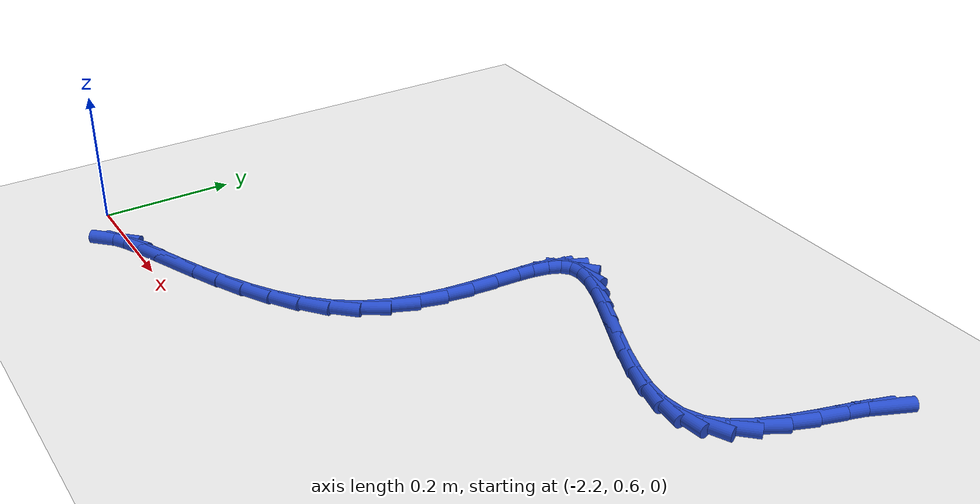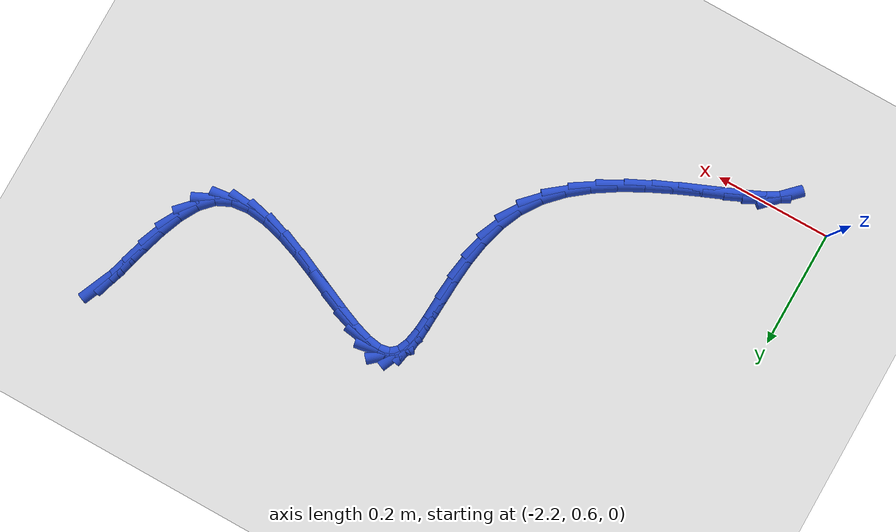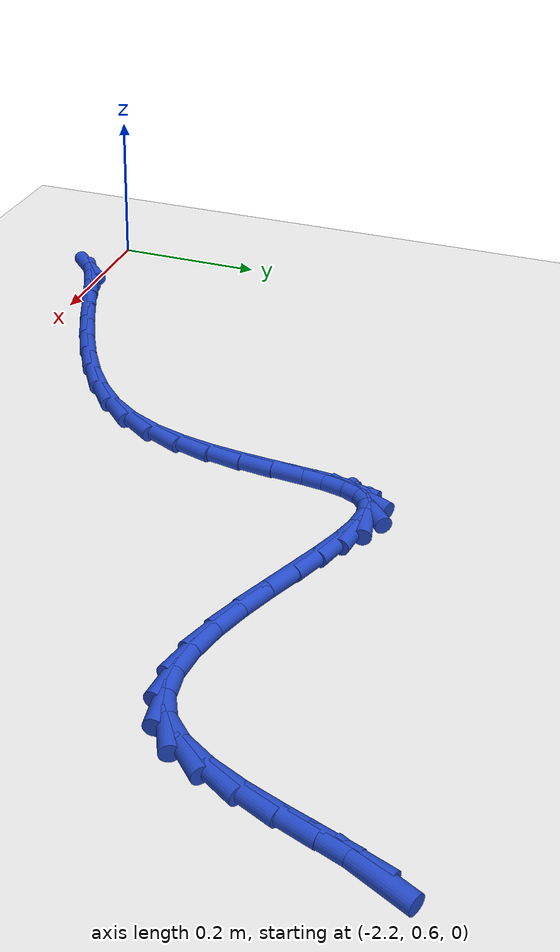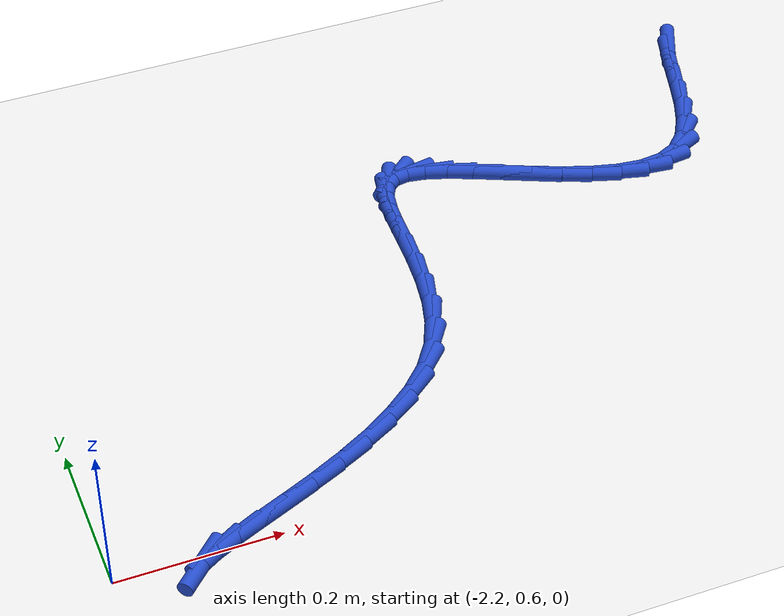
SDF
<sdf version="1.6">
 <world name="default">
  <model name="ground_plane">
   <static>1</static>
   <link name="link">
    <collision name="collision">
     <geometry><plane><normal>0 0 1</normal><size>100 100</size></plane></geometry>
     <surface><friction><ode><mu>100</mu><mu2>50</mu2></ode></friction></surface>
    </collision>
    <visual name="visual">
     <cast_shadows>0</cast_shadows>
     <geometry><plane><normal>0 0 1</normal><size>100 100</size></plane></geometry>
     <material>
      <script><uri>file://media/materials/scripts/gazebo.material</uri><name>Gazebo/WhiteGlow</name></script>
     </material>
    </visual>
   </link>
  </model>
  <model name="line">
   <link name="link_63">
    <pose>-1.205588448902238 1.2473067683477272 0.01 0 1.57 1.1560351252224266</pose>
    <collision name="collision">
     <geometry><cylinder><radius>0.01</radius><length>0.08</length></cylinder></geometry>
    </collision>
    <visual name="visual">
     <material>
      <script><name>Gazebo/Blue</name><uri>file://media/materials/scripts/gazebo.material</uri></script>
     </material>
     <geometry><cylinder><radius>0.01</radius><length>0.08</length></cylinder></geometry>
    </visual>
   </link>
   <link name="link_64">
    <pose>-1.215291468842116 1.2252696558437115 0.01 0 1.57 1.2675442248159452</pose>
    <collision name="collision">
     <geometry><cylinder><radius>0.01</radius><length>0.08</length></cylinder></geometry>
    </collision>
    <visual name="visual">
     <material>
      <script><name>Gazebo/Blue</name><uri>file://media/materials/scripts/gazebo.material</uri></script>
     </material>
     <geometry><cylinder><radius>0.01</radius><length>0.08</length></cylinder></geometry>
    </visual>
   </link>
   <link name="link_65">
    <pose>-1.2246751560980838 1.1952805442621273 0.01 0 1.57 1.2913073765914385</pose>
    <collision name="collision">
     <geometry><cylinder><radius>0.01</radius><length>0.08</length></cylinder></geometry>
    </collision>
    <visual name="visual">
     <material>
      <script><name>Gazebo/Blue</name><uri>file://media/materials/scripts/gazebo.material</uri></script>
     </material>
     <geometry><cylinder><radius>0.01</radius><length>0.08</length></cylinder></geometry>
    </visual>
   </link>
   <link name="link_66">
    <pose>-1.2346547785162367 1.1605084739595897 0.01 0 1.57 1.2649046296979543</pose>
    <collision name="collision">
     <geometry><cylinder><radius>0.01</radius><length>0.08</length></cylinder></geometry>
    </collision>
    <visual name="visual">
     <material>
      <script><name>Gazebo/Blue</name><uri>file://media/materials/scripts/gazebo.material</uri></script>
     </material>
     <geometry><cylinder><radius>0.01</radius><length>0.08</length></cylinder></geometry>
    </visual>
   </link>
   <link name="link_67">
    <pose>-1.2461456039426702 1.124122485292715 0.01 0 1.57 1.1906625044714105</pose>
    <collision name="collision">
     <geometry><cylinder><radius>0.01</radius><length>0.08</length></cylinder></geometry>
    </collision>
    <visual name="visual">
     <material>
      <script><name>Gazebo/Blue</name><uri>file://media/materials/scripts/gazebo.material</uri></script>
     </material>
     <geometry><cylinder><radius>0.01</radius><length>0.08</length></cylinder></geometry>
    </visual>
   </link>
   <link name="link_68">
    <pose>-1.2600629002234807 1.0892916186181192 0.01 0 1.57 1.0502690449166987</pose>
    <collision name="collision">
     <geometry><cylinder><radius>0.01</radius><length>0.08</length></cylinder></geometry>
    </collision>
    <visual name="visual">
     <material>
      <script><name>Gazebo/Blue</name><uri>file://media/materials/scripts/gazebo.material</uri></script>
     </material>
     <geometry><cylinder><radius>0.01</radius><length>0.08</length></cylinder></geometry>
    </visual>
   </link>
   <link name="link_69">
    <pose>-1.277321935204764 1.0591849142924177 0.01 0 1.57 0.8014399627049505</pose>
    <collision name="collision">
     <geometry><cylinder><radius>0.01</radius><length>0.08</length></cylinder></geometry>
    </collision>
    <visual name="visual">
     <material>
      <script><name>Gazebo/Blue</name><uri>file://media/materials/scripts/gazebo.material</uri></script>
     </material>
     <geometry><cylinder><radius>0.01</radius><length>0.08</length></cylinder></geometry>
    </visual>
   </link>
   <link name="link_70">
    <pose>-1.2988368228725595 1.036968436655702 0.01 0 1.57 0.44089542119227426</pose>
    <collision name="collision">
     <geometry><cylinder><radius>0.01</radius><length>0.08</length></cylinder></geometry>
    </collision>
    <visual name="visual">
     <material>
      <script><name>Gazebo/Blue</name><uri>file://media/materials/scripts/gazebo.material</uri></script>
     </material>
     <geometry><cylinder><radius>0.01</radius><length>0.08</length></cylinder></geometry>
    </visual>
   </link>
   <link name="link_71">
    <pose>-1.3250524218235935 1.0245979544101391 0.01 0 1.57 0.11979422280806351</pose>
    <collision name="collision">
     <geometry><cylinder><radius>0.01</radius><length>0.08</length></cylinder></geometry>
    </collision>
    <visual name="visual">
     <material>
      <script><name>Gazebo/Blue</name><uri>file://media/materials/scripts/gazebo.material</uri></script>
     </material>
     <geometry><cylinder><radius>0.01</radius><length>0.08</length></cylinder></geometry>
    </visual>
   </link>
   <link name="link_72">
    <pose>-1.355225896711307 1.020965955938719 0.01 0 1.57 -0.10566894988549089</pose>
    <collision name="collision">
     <geometry><cylinder><radius>0.01</radius><length>0.08</length></cylinder></geometry>
    </collision>
    <visual name="visual">
     <material>
      <script><name>Gazebo/Blue</name><uri>file://media/materials/scripts/gazebo.material</uri></script>
     </material>
     <geometry><cylinder><radius>0.01</radius><length>0.08</length></cylinder></geometry>
    </visual>
   </link>
   <link name="link_73">
    <pose>-1.388429360946096 1.0244876485588335 0.01 0 1.57 -0.2520091974335301</pose>
    <collision name="collision">
     <geometry><cylinder><radius>0.01</radius><length>0.08</length></cylinder></geometry>
    </collision>
    <visual name="visual">
     <material>
      <script><name>Gazebo/Blue</name><uri>file://media/materials/scripts/gazebo.material</uri></script>
     </material>
     <geometry><cylinder><radius>0.01</radius><length>0.08</length></cylinder></geometry>
    </visual>
   </link>
   <link name="link_74">
    <pose>-1.423734927938358 1.0335782395878768 0.01 0 1.57 -0.3441467476202652</pose>
    <collision name="collision">
     <geometry><cylinder><radius>0.01</radius><length>0.08</length></cylinder></geometry>
    </collision>
    <visual name="visual">
     <material>
      <script><name>Gazebo/Blue</name><uri>file://media/materials/scripts/gazebo.material</uri></script>
     </material>
     <geometry><cylinder><radius>0.01</radius><length>0.08</length></cylinder></geometry>
    </visual>
   </link>
   <link name="link_75">
    <pose>-1.4602147110984887 1.0466529363432417 0.01 0 1.57 -0.3987625711534483</pose>
    <collision name="collision">
     <geometry><cylinder><radius>0.01</radius><length>0.08</length></cylinder></geometry>
    </collision>
    <visual name="visual">
     <material>
      <script><name>Gazebo/Blue</name><uri>file://media/materials/scripts/gazebo.material</uri></script>
     </material>
     <geometry><cylinder><radius>0.01</radius><length>0.08</length></cylinder></geometry>
    </visual>
   </link>
   <link name="link_76">
    <pose>-1.4969408238368855 1.0621269461423224 0.01 0 1.57 -0.42443273840732293</pose>
    <collision name="collision">
     <geometry><cylinder><radius>0.01</radius><length>0.08</length></cylinder></geometry>
    </collision>
    <visual name="visual">
     <material>
      <script><name>Gazebo/Blue</name><uri>file://media/materials/scripts/gazebo.material</uri></script>
     </material>
     <geometry><cylinder><radius>0.01</radius><length>0.08</length></cylinder></geometry>
    </visual>
   </link>
   <link name="link_77">
    <pose>-1.5329853795639452 1.0784154763025116 0.01 0 1.57 -0.4233961348781415</pose>
    <collision name="collision">
     <geometry><cylinder><radius>0.01</radius><length>0.08</length></cylinder></geometry>
    </collision>
    <visual name="visual">
     <material>
      <script><name>Gazebo/Blue</name><uri>file://media/materials/scripts/gazebo.material</uri></script>
     </material>
     <geometry><cylinder><radius>0.01</radius><length>0.08</length></cylinder></geometry>
    </visual>
   </link>
   <link name="link_78">
    <pose>-1.5674204916900643 1.0939337341412023 0.01 0 1.57 -0.3913791133021768</pose>
    <collision name="collision">
     <geometry><cylinder><radius>0.01</radius><length>0.08</length></cylinder></geometry>
    </collision>
    <visual name="visual">
     <material>
      <script><name>Gazebo/Blue</name><uri>file://media/materials/scripts/gazebo.material</uri></script>
     </material>
     <geometry><cylinder><radius>0.01</radius><length>0.08</length></cylinder></geometry>
    </visual>
   </link>
   <link name="link_79">
    <pose>-1.5993182736256393 1.1070969269757882 0.01 0 1.57 -0.31368310989898596</pose>
    <collision name="collision">
     <geometry><cylinder><radius>0.01</radius><length>0.08</length></cylinder></geometry>
    </collision>
    <visual name="visual">
     <material>
      <script><name>Gazebo/Blue</name><uri>file://media/materials/scripts/gazebo.material</uri></script>
     </material>
     <geometry><cylinder><radius>0.01</radius><length>0.08</length></cylinder></geometry>
    </visual>
   </link>
   <link name="link_80">
    <pose>-1.6277508387810669 1.1163202621236623 0.01 0 1.57 -0.15266176484688126</pose>
    <collision name="collision">
     <geometry><cylinder><radius>0.01</radius><length>0.08</length></cylinder></geometry>
    </collision>
    <visual name="visual">
     <material>
      <script><name>Gazebo/Blue</name><uri>file://media/materials/scripts/gazebo.material</uri></script>
     </material>
     <geometry><cylinder><radius>0.01</radius><length>0.08</length></cylinder></geometry>
    </visual>
   </link>
   <link name="link_81">
    <pose>-1.651790300566745 1.1200189469022184 0.01 0 1.57 0.18020241364457096</pose>
    <collision name="collision">
     <geometry><cylinder><radius>0.01</radius><length>0.08</length></cylinder></geometry>
    </collision>
    <visual name="visual">
     <material>
      <script><name>Gazebo/Blue</name><uri>file://media/materials/scripts/gazebo.material</uri></script>
     </material>
     <geometry><cylinder><radius>0.01</radius><length>0.08</length></cylinder></geometry>
    </visual>
   </link>
   <link name="link_82">
    <pose>-1.670509233972487 1.116608756830729 0.01 0 1.57 0.7251034351288039</pose>
    <collision name="collision">
     <geometry><cylinder><radius>0.01</radius><length>0.08</length></cylinder></geometry>
    </collision>
    <visual name="visual">
     <material>
      <script><name>Gazebo/Blue</name><uri>file://media/materials/scripts/gazebo.material</uri></script>
     </material>
     <geometry><cylinder><radius>0.01</radius><length>0.08</length></cylinder></geometry>
    </visual>
   </link>
   <link name="link_83">
    <pose>-1.6834772458432412 1.1051173110745312 0.01 0 1.57 1.1575720080335494</pose>
    <collision name="collision">
     <geometry><cylinder><radius>0.01</radius><length>0.08</length></cylinder></geometry>
    </collision>
    <visual name="visual">
     <material>
      <script><name>Gazebo/Blue</name><uri>file://media/materials/scripts/gazebo.material</uri></script>
     </material>
     <geometry><cylinder><radius>0.01</radius><length>0.08</length></cylinder></geometry>
    </visual>
   </link>
   <link name="link_84">
    <pose>-1.6917068388883099 1.086348426154164 0.01 0 1.57 1.3819173327217311</pose>
    <collision name="collision">
     <geometry><cylinder><radius>0.01</radius><length>0.08</length></cylinder></geometry>
    </collision>
    <visual name="visual">
     <material>
      <script><name>Gazebo/Blue</name><uri>file://media/materials/scripts/gazebo.material</uri></script>
     </material>
     <geometry><cylinder><radius>0.01</radius><length>0.08</length></cylinder></geometry>
    </visual>
   </link>
   <link name="link_85">
    <pose>-1.6964708712470897 1.0614264147796493 0.01 0 1.57 1.4851546041089552</pose>
    <collision name="collision">
     <geometry><cylinder><radius>0.01</radius><length>0.08</length></cylinder></geometry>
    </collision>
    <visual name="visual">
     <material>
      <script><name>Gazebo/Blue</name><uri>file://media/materials/scripts/gazebo.material</uri></script>
     </material>
     <geometry><cylinder><radius>0.01</radius><length>0.08</length></cylinder></geometry>
    </visual>
   </link>
   <link name="link_86">
    <pose>-1.699042201058977 1.031475589661009 0.01 0 1.57 1.522054296327508</pose>
    <collision name="collision">
     <geometry><cylinder><radius>0.01</radius><length>0.08</length></cylinder></geometry>
    </collision>
    <visual name="visual">
     <material>
      <script><name>Gazebo/Blue</name><uri>file://media/materials/scripts/gazebo.material</uri></script>
     </material>
     <geometry><cylinder><radius>0.01</radius><length>0.08</length></cylinder></geometry>
    </visual>
   </link>
   <link name="link_87">
    <pose>-1.7006936864633682 0.9976202635082653 0.01 0 1.57 1.5161361844266164</pose>
    <collision name="collision">
     <geometry><cylinder><radius>0.01</radius><length>0.08</length></cylinder></geometry>
    </collision>
    <visual name="visual">
     <material>
      <script><name>Gazebo/Blue</name><uri>file://media/materials/scripts/gazebo.material</uri></script>
     </material>
     <geometry><cylinder><radius>0.01</radius><length>0.08</length></cylinder></geometry>
    </visual>
   </link>
   <link name="link_88">
    <pose>-1.7026981855996597 0.9609847490314396 0.01 0 1.57 1.4762698084401473</pose>
    <collision name="collision">
     <geometry><cylinder><radius>0.01</radius><length>0.08</length></cylinder></geometry>
    </collision>
    <visual name="visual">
     <material>
      <script><name>Gazebo/Blue</name><uri>file://media/materials/scripts/gazebo.material</uri></script>
     </material>
     <geometry><cylinder><radius>0.01</radius><length>0.08</length></cylinder></geometry>
    </visual>
   </link>
   <link name="link_89">
    <pose>-1.7063285566072486 0.9226933589405543 0.01 0 1.57 1.4041791667592345</pose>
    <collision name="collision">
     <geometry><cylinder><radius>0.01</radius><length>0.08</length></cylinder></geometry>
    </collision>
    <visual name="visual">
     <material>
      <script><name>Gazebo/Blue</name><uri>file://media/materials/scripts/gazebo.material</uri></script>
     </material>
     <geometry><cylinder><radius>0.01</radius><length>0.08</length></cylinder></geometry>
    </visual>
   </link>
   <link name="link_90">
    <pose>-1.712857657625531 0.8838704059456312 0.01 0 1.57 1.2978790147797123</pose>
    <collision name="collision">
     <geometry><cylinder><radius>0.01</radius><length>0.08</length></cylinder></geometry>
    </collision>
    <visual name="visual">
     <material>
      <script><name>Gazebo/Blue</name><uri>file://media/materials/scripts/gazebo.material</uri></script>
     </material>
     <geometry><cylinder><radius>0.01</radius><length>0.08</length></cylinder></geometry>
    </visual>
   </link>
   <link name="link_91">
    <pose>-1.7235583467939035 0.8456402027566923 0.01 0 1.57 1.1544701277788771</pose>
    <collision name="collision">
     <geometry><cylinder><radius>0.01</radius><length>0.08</length></cylinder></geometry>
    </collision>
    <visual name="visual">
     <material>
      <script><name>Gazebo/Blue</name><uri>file://media/materials/scripts/gazebo.material</uri></script>
     </material>
     <geometry><cylinder><radius>0.01</radius><length>0.08</length></cylinder></geometry>
    </visual>
   </link>
   <link name="link_92">
    <pose>-1.7397034822517623 0.8091270620837592 0.01 0 1.57 0.9753567160391964</pose>
    <collision name="collision">
     <geometry><cylinder><radius>0.01</radius><length>0.08</length></cylinder></geometry>
    </collision>
    <visual name="visual">
     <material>
      <script><name>Gazebo/Blue</name><uri>file://media/materials/scripts/gazebo.material</uri></script>
     </material>
     <geometry><cylinder><radius>0.01</radius><length>0.08</length></cylinder></geometry>
    </visual>
   </link>
   <link name="link_93">
    <pose>-1.7625274332393983 0.775436720518552 0.01 0 1.57 0.7998678184650023</pose>
    <collision name="collision">
     <geometry><cylinder><radius>0.01</radius><length>0.08</length></cylinder></geometry>
    </collision>
    <visual name="visual">
     <material>
      <script><name>Gazebo/Blue</name><uri>file://media/materials/scripts/gazebo.material</uri></script>
     </material>
     <geometry><cylinder><radius>0.01</radius><length>0.08</length></cylinder></geometry>
    </visual>
   </link>
   <link name="link_94">
    <pose>-1.7920225301705475 0.7450754623246388 0.01 0 1.57 0.6658418783970347</pose>
    <collision name="collision">
     <geometry><cylinder><radius>0.01</radius><length>0.08</length></cylinder></geometry>
    </collision>
    <visual name="visual">
     <material>
      <script><name>Gazebo/Blue</name><uri>file://media/materials/scripts/gazebo.material</uri></script>
     </material>
     <geometry><cylinder><radius>0.01</radius><length>0.08</length></cylinder></geometry>
    </visual>
   </link>
   <link name="link_95">
    <pose>-1.8267010116066866 0.7178352265392146 0.01 0 1.57 0.566808202128584</pose>
    <collision name="collision">
     <geometry><cylinder><radius>0.01</radius><length>0.08</length></cylinder></geometry>
    </collision>
    <visual name="visual">
     <material>
      <script><name>Gazebo/Blue</name><uri>file://media/materials/scripts/gazebo.material</uri></script>
     </material>
     <geometry><cylinder><radius>0.01</radius><length>0.08</length></cylinder></geometry>
    </visual>
   </link>
   <link name="link_96">
    <pose>-1.864988557231454 0.6934661757914155 0.01 0 1.57 0.4946274973206426</pose>
    <collision name="collision">
     <geometry><cylinder><radius>0.01</radius><length>0.08</length></cylinder></geometry>
    </collision>
    <visual name="visual">
     <material>
      <script><name>Gazebo/Blue</name><uri>file://media/materials/scripts/gazebo.material</uri></script>
     </material>
     <geometry><cylinder><radius>0.01</radius><length>0.08</length></cylinder></geometry>
    </visual>
   </link>
   <link name="link_97">
    <pose>-1.9053108467284838 0.6717184727103779 0.01 0 1.57 0.4435364420760317</pose>
    <collision name="collision">
     <geometry><cylinder><radius>0.01</radius><length>0.08</length></cylinder></geometry>
    </collision>
    <visual name="visual">
     <material>
      <script><name>Gazebo/Blue</name><uri>file://media/materials/scripts/gazebo.material</uri></script>
     </material>
     <geometry><cylinder><radius>0.01</radius><length>0.08</length></cylinder></geometry>
    </visual>
   </link>
   <link name="link_98">
    <pose>-1.9460935597814162 0.6523422799252383 0.01 0 1.57 0.4102801560836406</pose>
    <collision name="collision">
     <geometry><cylinder><radius>0.01</radius><length>0.08</length></cylinder></geometry>
    </collision>
    <visual name="visual">
     <material>
      <script><name>Gazebo/Blue</name><uri>file://media/materials/scripts/gazebo.material</uri></script>
     </material>
     <geometry><cylinder><radius>0.01</radius><length>0.08</length></cylinder></geometry>
    </visual>
   </link>
   <link name="link_99">
    <pose>-1.985762376073886 0.6350877600651328 0.01 0 1.57 0.3941942386889017</pose>
    <collision name="collision">
     <geometry><cylinder><radius>0.01</radius><length>0.08</length></cylinder></geometry>
    </collision>
    <visual name="visual">
     <material>
      <script><name>Gazebo/Blue</name><uri>file://media/materials/scripts/gazebo.material</uri></script>
     </material>
     <geometry><cylinder><radius>0.01</radius><length>0.08</length></cylinder></geometry>
    </visual>
   </link>
   <link name="link_100">
    <pose>-2.022742975289532 0.6197050757591973 0.01 0 1.57 0.39812413103313693</pose>
    <collision name="collision">
     <geometry><cylinder><radius>0.01</radius><length>0.08</length></cylinder></geometry>
    </collision>
    <visual name="visual">
     <material>
      <script><name>Gazebo/Blue</name><uri>file://media/materials/scripts/gazebo.material</uri></script>
     </material>
     <geometry><cylinder><radius>0.01</radius><length>0.08</length></cylinder></geometry>
    </visual>
   </link>
   <link name="link_101">
    <pose>-2.0554610371119897 0.6059443896365688 0.01 0 1.57 0.43184995824933214</pose>
    <collision name="collision">
     <geometry><cylinder><radius>0.01</radius><length>0.08</length></cylinder></geometry>
    </collision>
    <visual name="visual">
     <material>
      <script><name>Gazebo/Blue</name><uri>file://media/materials/scripts/gazebo.material</uri></script>
     </material>
     <geometry><cylinder><radius>0.01</radius><length>0.08</length></cylinder></geometry>
    </visual>
   </link>
   <link name="link_102">
    <pose>-2.0823422412248966 0.5935558643263833 0.01 0 1.57 0.524568072010962</pose>
    <collision name="collision">
     <geometry><cylinder><radius>0.01</radius><length>0.08</length></cylinder></geometry>
    </collision>
    <visual name="visual">
     <material>
      <script><name>Gazebo/Blue</name><uri>file://media/materials/scripts/gazebo.material</uri></script>
     </material>
     <geometry><cylinder><radius>0.01</radius><length>0.08</length></cylinder></geometry>
    </visual>
   </link>
   <link name="link_103">
    <pose>-2.1018122673118906 0.5822896624577769 0.01 0 1.57 0.7810485937625653</pose>
    <collision name="collision">
     <geometry><cylinder><radius>0.01</radius><length>0.08</length></cylinder></geometry>
    </collision>
    <visual name="visual">
     <material>
      <script><name>Gazebo/Blue</name><uri>file://media/materials/scripts/gazebo.material</uri></script>
     </material>
     <geometry><cylinder><radius>0.01</radius><length>0.08</length></cylinder></geometry>
    </visual>
   </link>
  </model>
 </world>
</sdf>
